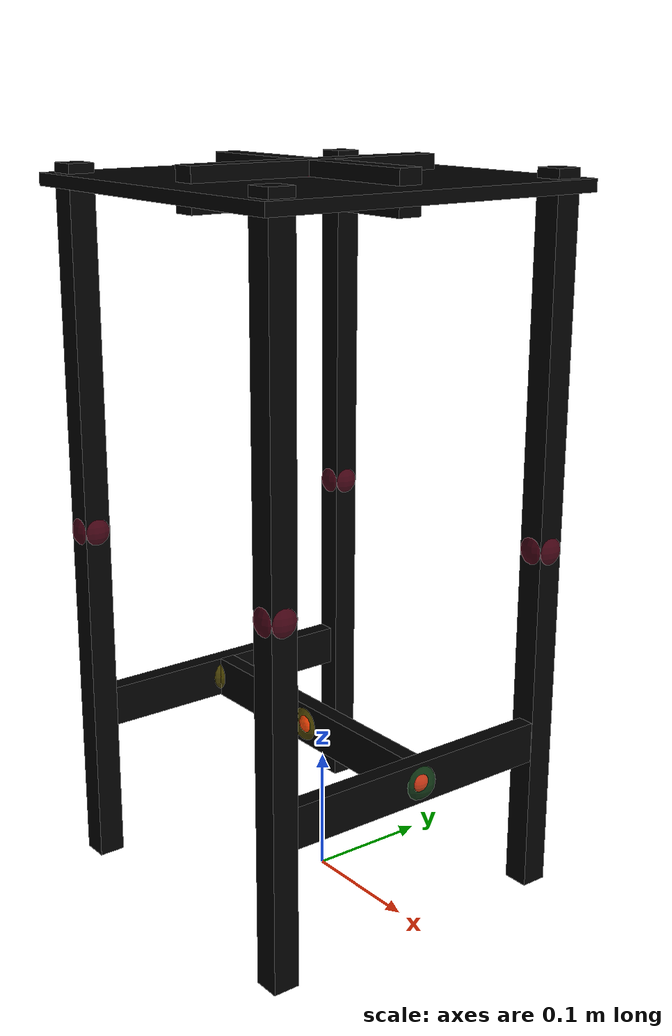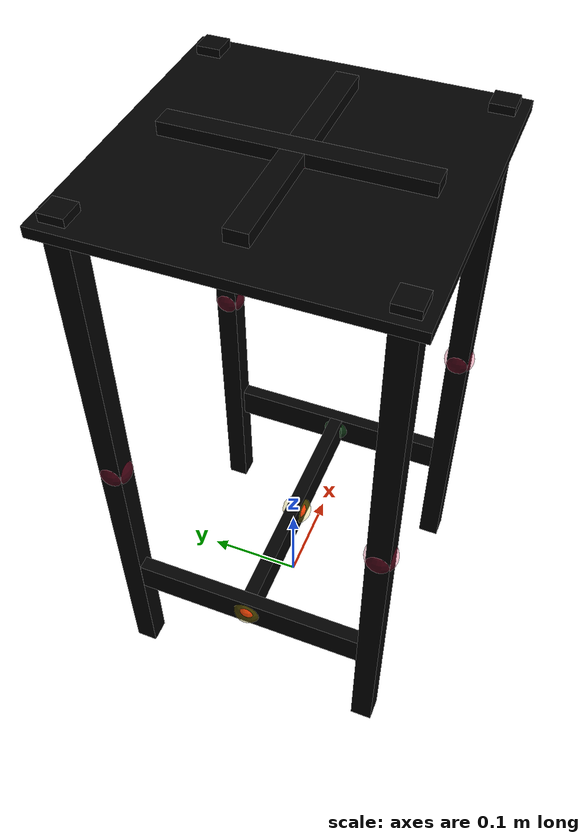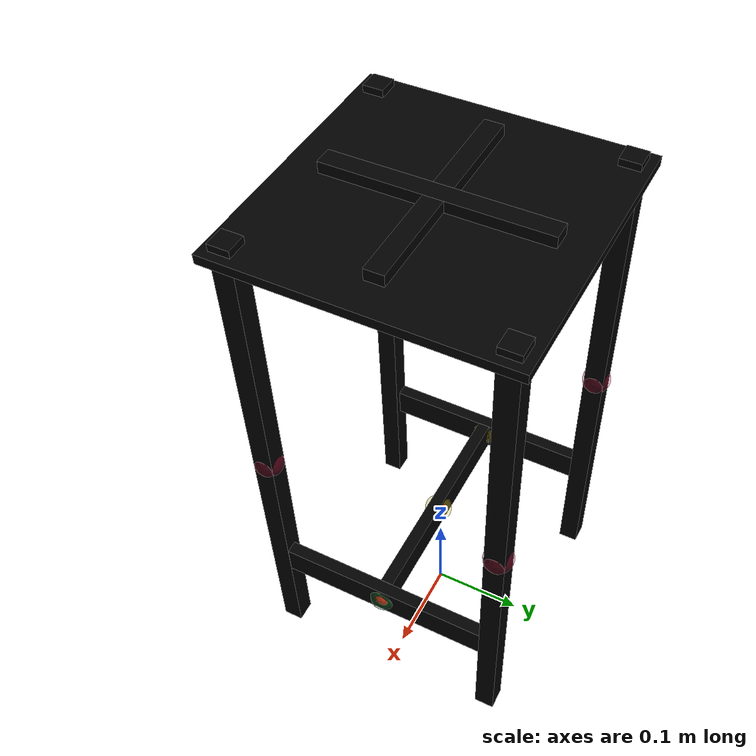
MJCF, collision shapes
<mujoco model="nightstand_1">
  <custom>

<numeric name="7_part7_initpos" data="0.2 0.09460705 0.02191628 0 0 -1 0" />

<numeric name="0_part0_initpos" data="0.53542564 0.5039378 0.01252427 0.5 -0.5 -0.5 0.5" />
<numeric name="6_part6_initpos" data="0.53406423 0.38586903 0.00894539 0.5 -0.5 -0.5 0.5" />
<numeric name="5_part5_initpos" data="-0.2433973 0.40326389 0.00891954 0.7 0 0.7 0" />
<numeric name="2_part2_initpos" data="-0.23966732 0.47204275 0.00891956 0.7 0 0.7 0" />

<numeric name="4_part4_initpos" data="0.54725019 0.1726845 0.01703871 0.71 0 0.71 0" />
<numeric name="3_part3_initpos" data="0.67266165 0.17964293 0.00679743 0.5 0.5 -0.5 -0.5" />
<numeric name="1_part1_initpos" data="0.46835845 0.1735415 0.01703871 0.71 0 0.71 0" />

  </custom>
  <asset>
    <mesh file="nightstand_1/0.stl" name="part0" scale="0.000768 0.000768 0.000768" />
    <mesh file="nightstand_1/7.stl" name="part7" scale="0.000768 0.000768 0.000768" />
    <mesh file="nightstand_1/6.stl" name="part6" scale="0.000768 0.000768 0.000768" />
    <mesh file="nightstand_1/5.stl" name="part5" scale="0.000768 0.000768 0.000768" />
    <mesh file="nightstand_1/4.stl" name="part4" scale="0.000768 0.000768 0.000768" />
    <mesh file="nightstand_1/3.stl" name="part3" scale="0.000768 0.000768 0.000768" />
    <mesh file="nightstand_1/2.stl" name="part2" scale="0.000768 0.000768 0.000768" />
    <mesh file="nightstand_1/1.stl" name="part1" scale="0.000768 0.000768 0.000768" />
  </asset>
  <worldbody><body name="combined_body" pos="0.12 0.12 0.2877311953125" quat="1 0 0 0"><geom conaffinity="0" contype="0" density="0" mesh="part0" name="0_part0_mesh" pos="3.0720000000000004e-10 0.0 7.680000000000001e-11" rgba="0.82 0.71 0.55 1" type="mesh" quat="1 0 0 0" />
      <geom density="50" name="noviz_collision_0_part0_0" pos="3.0720000000000004e-10 0.0 7.680000000000001e-11" quat="1 0 0 0" rgba="0 0 0 0" size="0.010752000000000001 0.010752000000000001 0.28800000000000003" solref="0.001 1" type="box" />
    <site name="0_part0_ltgt_site0" pos="3.0720000000000004e-10 0.0 7.680000000000001e-11" size="0.01 0.01 0.01" rgba="1 0 0 1" type="sphere" group="1" quat="1 0 0 0" />
      <site name="0_part0_rtgt_site0" pos="3.0720000000000004e-10 0.0 7.680000000000001e-11" size="0.01 0.01 0.01" rgba="1 0 0 1" type="sphere" group="1" quat="1 0 0 0" />

      <site name="0_part0_horizontal_radius_site" pos="3.0720000000000004e-10 0.0 7.680000000000001e-11" quat="1 0 0 0" rgba="0 0 0 0" size="0.01536" />
      <site name="0_part0_top_site" pos="3.0720000000000004e-10 0.0 7.680000000000001e-11" quat="1 0 0 0" rgba="0 0 0 0" size="0.01536" />
      <site name="0_part0_bottom_site" pos="3.0720000000000004e-10 0.0 7.680000000000001e-11" quat="1 0 0 0" rgba="0 0 0 0" size="0.01536" />
      <site name="0_part0_corner_site8" pos="3.0720000000000004e-10 0.0 7.680000000000001e-11" quat="1 0 0 0" rgba="0 0 0 0" size="0.01536" />
      <site name="0_part0_corner_site7" pos="3.0720000000000004e-10 0.0 7.680000000000001e-11" quat="1 0 0 0" rgba="0 0 0 0" size="0.01536" />
      <site name="0_part0_corner_site6" pos="3.0720000000000004e-10 0.0 7.680000000000001e-11" quat="1 0 0 0" rgba="0 0 0 0" size="0.01536" />
      <site name="0_part0_corner_site5" pos="3.0720000000000004e-10 0.0 7.680000000000001e-11" quat="1 0 0 0" rgba="0 0 0 0" size="0.01536" />
      <site name="0_part0_corner_site4" pos="3.0720000000000004e-10 0.0 7.680000000000001e-11" quat="1 0 0 0" rgba="0 0 0 0" size="0.01536" />
      <site name="0_part0_corner_site3" pos="3.0720000000000004e-10 0.0 7.680000000000001e-11" quat="1 0 0 0" rgba="0 0 0 0" size="0.01536" />
      <site name="0_part0_corner_site2" pos="3.0720000000000004e-10 0.0 7.680000000000001e-11" quat="1 0 0 0" rgba="0 0 0 0" size="0.01536" />
      <site name="0_part0_corner_site1" pos="3.0720000000000004e-10 0.0 7.680000000000001e-11" quat="1 0 0 0" rgba="0 0 0 0" size="0.01536" />
      <site name="leg-toppane,0,conn_site4" pos="3.0720000000000004e-10 0.0 7.680000000000001e-11" quat="1 0 0 0" rgba="0.9019 0.0980 0.2941 0.3" size="0.01536" />
      <site name="leg-siderail,0,180,conn_site3" pos="3.0720000000000004e-10 0.0 7.680000000000001e-11" quat="1 0 0 0" rgba="0.2352 0.7058 0.2941 0.3" size="0.01536" />
      <geom conaffinity="0" contype="0" density="0" mesh="part7" name="7_part7_mesh" pos="-0.12679679662079998 -0.1267968750336 0.2755392000768" rgba="0.82 0.71 0.55 1" type="mesh" quat="1 0 0 0" />
      <geom density="50" name="noviz_collision_7_part7_0" pos="-0.12679679662079998 -0.1267968750336 0.2755392000768" quat="1 0 0 0" rgba="0 0 0 0" size="0.146304 0.146304 0.004877568" solref="0.001 1" type="box" />
      <geom density="50" name="noviz_collision_7_part7_1" pos="-0.12679679662079998 -0.1267968750336 0.2755392000768" quat="1 0 0 0" rgba="0 0 0 0" size="0.0097536 0.11135999999999999 0.016718123520000003" solref="0.001 1" type="box" />
      <geom density="50" name="noviz_collision_7_part7_2" pos="-0.12679679662079998 -0.1267968750336 0.2755392000768" quat="1 0 0 0" rgba="0 0 0 0" size="0.0097536 0.11135999999999999 0.016718123520000003" solref="0.001 1" type="box" />
      <geom density="50" name="noviz_collision_7_part7_3" pos="-0.12679679662079998 -0.1267968750336 0.2755392000768" quat="1 0 0 0" rgba="0 0 0 0" size="0.11135999999999999 0.0097536 0.01671727872" solref="0.001 1" type="box" />
      <geom density="50" name="noviz_collision_7_part7_4" pos="-0.12679679662079998 -0.1267968750336 0.2755392000768" quat="1 0 0 0" rgba="0 0 0 0" size="0.11135999999999999 0.0097536 0.01671727872" solref="0.001 1" type="box" />
    <site name="7_part7_horizontal_radius_site" pos="-0.12679679662079998 -0.1267968750336 0.2755392000768" quat="1 0 0 0" rgba="0 0 0 0" size="0.01536" />
      <site name="7_part7_top_site" pos="-0.12679679662079998 -0.1267968750336 0.2755392000768" quat="1 0 0 0" rgba="0 0 0 0" size="0.01536" />
      <site name="7_part7_bottom_site" pos="-0.12679679662079998 -0.1267968750336 0.2755392000768" quat="1 0 0 0" rgba="0 0 0 0" size="0.01536" />
      <site name="7_part7_corner_site8" pos="-0.12679679662079998 -0.1267968750336 0.2755392000768" quat="1 0 0 0" rgba="0 0 0 0" size="0.01536" />
      <site name="7_part7_corner_site7" pos="-0.12679679662079998 -0.1267968750336 0.2755392000768" quat="1 0 0 0" rgba="0 0 0 0" size="0.01536" />
      <site name="7_part7_corner_site6" pos="-0.12679679662079998 -0.1267968750336 0.2755392000768" quat="1 0 0 0" rgba="0 0 0 0" size="0.01536" />
      <site name="7_part7_corner_site5" pos="-0.12679679662079998 -0.1267968750336 0.2755392000768" quat="1 0 0 0" rgba="0 0 0 0" size="0.01536" />
      <site name="7_part7_corner_site4" pos="-0.12679679662079998 -0.1267968750336 0.2755392000768" quat="1 0 0 0" rgba="0 0 0 0" size="0.01536" />
      <site name="7_part7_corner_site3" pos="-0.12679679662079998 -0.1267968750336 0.2755392000768" quat="1 0 0 0" rgba="0 0 0 0" size="0.01536" />
      <site name="7_part7_corner_site2" pos="-0.12679679662079998 -0.1267968750336 0.2755392000768" quat="1 0 0 0" rgba="0 0 0 0" size="0.01536" />
      <site name="7_part7_corner_site1" pos="-0.12679679662079998 -0.1267968750336 0.2755392000768" quat="1 0 0 0" rgba="0 0 0 0" size="0.01536" />
      <site name="toppane-leg,0,conn_site4" pos="-0.12679679662079998 -0.1267968750336 0.2755392000768" quat="1 0 0 0" rgba="0.9019 0.0980 0.2941 0.3" size="0.01536" />
      <site name="toppane-leg,0,conn_site3" pos="-0.12679679662079998 -0.1267968750336 0.2755392000768" quat="1 0 0 0" rgba="0.9019 0.0980 0.2941 0.3" size="0.01536" />
      <site name="toppane-leg,0,conn_site2" pos="-0.12679679662079998 -0.1267968750336 0.2755392000768" quat="1 0 0 0" rgba="0.9019 0.0980 0.2941 0.3" size="0.01536" />
      <site name="toppane-leg,0,conn_site1" pos="-0.12679679662079998 -0.1267968750336 0.2755392000768" quat="1 0 0 0" rgba="0.9019 0.0980 0.2941 0.3" size="0.01536" />
      <geom conaffinity="0" contype="0" density="0" mesh="part6" name="6_part6_mesh" pos="-0.2535935904 0.0 7.680000000000001e-11" rgba="0.82 0.71 0.55 1" type="mesh" quat="1 0 0 0" />
      <geom density="50" name="noviz_collision_6_part6_0" pos="-0.2535935904 0.0 7.680000000000001e-11" quat="1 0 0 0" rgba="0 0 0 0" size="0.010752000000000001 0.010752000000000001 0.28800000000000003" solref="0.001 1" type="box" />
    <site name="6_part6_ltgt_site0" pos="-0.2535935904 0.0 7.680000000000001e-11" size="0.01 0.01 0.01" rgba="1 0 0 1" type="sphere" group="1" quat="1 0 0 0" />
      <site name="6_part6_rtgt_site0" pos="-0.2535935904 0.0 7.680000000000001e-11" size="0.01 0.01 0.01" rgba="1 0 0 1" type="sphere" group="1" quat="1 0 0 0" />
      <site name="6_part6_horizontal_radius_site" pos="-0.2535935904 0.0 7.680000000000001e-11" quat="1 0 0 0" rgba="0 0 0 0" size="0.01536" />
      <site name="6_part6_top_site" pos="-0.2535935904 0.0 7.680000000000001e-11" quat="1 0 0 0" rgba="0 0 0 0" size="0.01536" />
      <site name="6_part6_bottom_site" pos="-0.2535935904 0.0 7.680000000000001e-11" quat="1 0 0 0" rgba="0 0 0 0" size="0.01536" />
      <site name="6_part6_corner_site8" pos="-0.2535935904 0.0 7.680000000000001e-11" quat="1 0 0 0" rgba="0 0 0 0" size="0.01536" />
      <site name="6_part6_corner_site7" pos="-0.2535935904 0.0 7.680000000000001e-11" quat="1 0 0 0" rgba="0 0 0 0" size="0.01536" />
      <site name="6_part6_corner_site6" pos="-0.2535935904 0.0 7.680000000000001e-11" quat="1 0 0 0" rgba="0 0 0 0" size="0.01536" />
      <site name="6_part6_corner_site5" pos="-0.2535935904 0.0 7.680000000000001e-11" quat="1 0 0 0" rgba="0 0 0 0" size="0.01536" />
      <site name="6_part6_corner_site4" pos="-0.2535935904 0.0 7.680000000000001e-11" quat="1 0 0 0" rgba="0 0 0 0" size="0.01536" />
      <site name="6_part6_corner_site3" pos="-0.2535935904 0.0 7.680000000000001e-11" quat="1 0 0 0" rgba="0 0 0 0" size="0.01536" />
      <site name="6_part6_corner_site2" pos="-0.2535935904 0.0 7.680000000000001e-11" quat="1 0 0 0" rgba="0 0 0 0" size="0.01536" />
      <site name="6_part6_corner_site1" pos="-0.2535935904 0.0 7.680000000000001e-11" quat="1 0 0 0" rgba="0 0 0 0" size="0.01536" />
      <site name="leg-toppane,0,conn_site2" pos="-0.2535935904 0.0 7.680000000000001e-11" quat="1 0 0 0" rgba="0.9019 0.0980 0.2941 0.3" size="0.01536" />
      <site name="leg-siderail,0,180,conn_site2" pos="-0.2535935904 0.0 7.680000000000001e-11" quat="1 0 0 0" rgba="0.2352 0.7058 0.2941 0.3" size="0.01536" />
      <geom conaffinity="0" contype="0" density="0" mesh="part5" name="5_part5_mesh" pos="-0.2535935904 -0.25359366435840003 7.680000000000001e-11" rgba="0.82 0.71 0.55 1" type="mesh" quat="1 0 0 0" />
      <geom density="50" name="noviz_collision_5_part5_0" pos="-0.2535935904 -0.25359366435840003 7.680000000000001e-11" quat="1 0 0 0" rgba="0 0 0 0" size="0.010752000000000001 0.010752000000000001 0.28800000000000003" solref="0.001 1" type="box" />
    <site name="5_part5_ltgt_site0" pos="-0.2535935904 -0.25359366435840003 7.680000000000001e-11" size="0.01 0.01 0.01" rgba="1 0 0 1" type="sphere" group="1" quat="1 0 0 0" />
      <site name="5_part5_rtgt_site0" pos="-0.2535935904 -0.25359366435840003 7.680000000000001e-11" size="0.01 0.01 0.01" rgba="1 0 0 1" type="sphere" group="1" quat="1 0 0 0" />
      <site name="5_part5_horizontal_radius_site" pos="-0.2535935904 -0.25359366435840003 7.680000000000001e-11" quat="1 0 0 0" rgba="0 0 0 0" size="0.01536" />
      <site name="5_part5_top_site" pos="-0.2535935904 -0.25359366435840003 7.680000000000001e-11" quat="1 0 0 0" rgba="0 0 0 0" size="0.01536" />
      <site name="5_part5_bottom_site" pos="-0.2535935904 -0.25359366435840003 7.680000000000001e-11" quat="1 0 0 0" rgba="0 0 0 0" size="0.01536" />
      <site name="5_part5_corner_site8" pos="-0.2535935904 -0.25359366435840003 7.680000000000001e-11" quat="1 0 0 0" rgba="0 0 0 0" size="0.01536" />
      <site name="5_part5_corner_site7" pos="-0.2535935904 -0.25359366435840003 7.680000000000001e-11" quat="1 0 0 0" rgba="0 0 0 0" size="0.01536" />
      <site name="5_part5_corner_site6" pos="-0.2535935904 -0.25359366435840003 7.680000000000001e-11" quat="1 0 0 0" rgba="0 0 0 0" size="0.01536" />
      <site name="5_part5_corner_site5" pos="-0.2535935904 -0.25359366435840003 7.680000000000001e-11" quat="1 0 0 0" rgba="0 0 0 0" size="0.01536" />
      <site name="5_part5_corner_site4" pos="-0.2535935904 -0.25359366435840003 7.680000000000001e-11" quat="1 0 0 0" rgba="0 0 0 0" size="0.01536" />
      <site name="5_part5_corner_site3" pos="-0.2535935904 -0.25359366435840003 7.680000000000001e-11" quat="1 0 0 0" rgba="0 0 0 0" size="0.01536" />
      <site name="5_part5_corner_site2" pos="-0.2535935904 -0.25359366435840003 7.680000000000001e-11" quat="1 0 0 0" rgba="0 0 0 0" size="0.01536" />
      <site name="5_part5_corner_site1" pos="-0.2535935904 -0.25359366435840003 7.680000000000001e-11" quat="1 0 0 0" rgba="0 0 0 0" size="0.01536" />
      <site name="leg-toppane,0,conn_site1" pos="-0.2535935904 -0.25359366435840003 7.680000000000001e-11" quat="1 0 0 0" rgba="0.9019 0.0980 0.2941 0.3" size="0.01536" />
      <site name="leg-siderail,0,180,conn_site1" pos="-0.2535935904 -0.25359366435840003 7.680000000000001e-11" quat="1 0 0 0" rgba="0.2352 0.7058 0.2941 0.3" size="0.01536" />
      <geom conaffinity="0" contype="0" density="0" mesh="part4" name="4_part4_mesh" pos="-0.2571403571712 -0.12679683440640002 -0.15849600007680004" rgba="0.82 0.71 0.55 1" type="mesh" quat="1 0 0 0" />
      <geom density="50" name="noviz_collision_4_part4_0" pos="-0.2571403571712 -0.12679683440640002 -0.15849600007680004" quat="1 0 0 0" rgba="0 0 0 0" size="0.00682985472 0.11988149760000001 0.016718123520000003" solref="0.001 1" type="box" />
    <site name="4_part4_horizontal_radius_site" pos="-0.2571403571712 -0.12679683440640002 -0.15849600007680004" quat="1 0 0 0" rgba="0 0 0 0" size="0.01536" />
      <site name="4_part4_top_site" pos="-0.2571403571712 -0.12679683440640002 -0.15849600007680004" quat="1 0 0 0" rgba="0 0 0 0" size="0.01536" />
      <site name="4_part4_bottom_site" pos="-0.2571403571712 -0.12679683440640002 -0.15849600007680004" quat="1 0 0 0" rgba="0 0 0 0" size="0.01536" />
      <site name="4_part4_ltgt_site0" pos="-0.2571403571712 -0.12679683440640002 -0.15849600007680004" size="0.01 0.01 0.01" rgba="1 0 0 1" type="sphere" group="1" quat="1 0 0 0" />
      <site name="4_part4_rtgt_site0" pos="-0.2571403571712 -0.12679683440640002 -0.15849600007680004" size="0.01 0.01 0.01" rgba="1 0 0 1" type="sphere" group="1" quat="1 0 0 0" />
      <site name="4_part4_corner_site8" pos="-0.2571403571712 -0.12679683440640002 -0.15849600007680004" quat="1 0 0 0" rgba="0 0 0 0" size="0.01536" />
      <site name="4_part4_corner_site7" pos="-0.2571403571712 -0.12679683440640002 -0.15849600007680004" quat="1 0 0 0" rgba="0 0 0 0" size="0.01536" />
      <site name="4_part4_corner_site6" pos="-0.2571403571712 -0.12679683440640002 -0.15849600007680004" quat="1 0 0 0" rgba="0 0 0 0" size="0.01536" />
      <site name="4_part4_corner_site5" pos="-0.2571403571712 -0.12679683440640002 -0.15849600007680004" quat="1 0 0 0" rgba="0 0 0 0" size="0.01536" />
      <site name="4_part4_corner_site4" pos="-0.2571403571712 -0.12679683440640002 -0.15849600007680004" quat="1 0 0 0" rgba="0 0 0 0" size="0.01536" />
      <site name="4_part4_corner_site3" pos="-0.2571403571712 -0.12679683440640002 -0.15849600007680004" quat="1 0 0 0" rgba="0 0 0 0" size="0.01536" />
      <site name="4_part4_corner_site2" pos="-0.2571403571712 -0.12679683440640002 -0.15849600007680004" quat="1 0 0 0" rgba="0 0 0 0" size="0.01536" />
      <site name="4_part4_corner_site1" pos="-0.2571403571712 -0.12679683440640002 -0.15849600007680004" quat="1 0 0 0" rgba="0 0 0 0" size="0.01536" />
      <site name="siderail-midrail,0,180,conn_site1" pos="-0.2571403571712 -0.12679683440640002 -0.15849600007680004" quat="1 0 0 0" rgba="1.0 0.8823 0.0980 0.3" size="0.01536" />
      <site name="siderail-leg,0,180,conn_site2" pos="-0.2571403571712 -0.12679683440640002 -0.15849600007680004" quat="1 0 0 0" rgba="0.2352 0.7058 0.2941 0.3" size="0.01536" />
      <site name="siderail-leg,0,180,conn_site1" pos="-0.2571403571712 -0.12679683440640002 -0.15849600007680004" quat="1 0 0 0" rgba="0.2352 0.7058 0.2941 0.3" size="0.01536" />
      <geom conaffinity="0" contype="0" density="0" mesh="part3" name="3_part3_mesh" pos="-0.126796792704 -0.12679683440640002 -0.15849600007680004" rgba="0.82 0.71 0.55 1" type="mesh" quat="1 0 0 0" />
      <geom density="50" name="noviz_collision_3_part3_0" pos="-0.126796792704 -0.12679683440640002 -0.15849600007680004" quat="1 0 0 0" rgba="0 0 0 0" size="0.1235160576 0.00682752 0.017101278719999998" solref="0.001 1" type="box" />
    <site name="3_part3_ltgt_site0" pos="-0.126796792704 -0.12679683440640002 -0.15849600007680004" size="0.01 0.01 0.01" rgba="1 0 0 1" type="sphere" group="1" quat="1 0 0 0" />
      <site name="3_part3_rtgt_site0" pos="-0.126796792704 -0.12679683440640002 -0.15849600007680004" size="0.01 0.01 0.01" rgba="1 0 0 1" type="sphere" group="1" quat="1 0 0 0" />
      <site name="3_part3_horizontal_radius_site" pos="-0.126796792704 -0.12679683440640002 -0.15849600007680004" quat="1 0 0 0" rgba="0 0 0 0" size="0.01536" />
      <site name="3_part3_top_site" pos="-0.126796792704 -0.12679683440640002 -0.15849600007680004" quat="1 0 0 0" rgba="0 0 0 0" size="0.01536" />
      <site name="3_part3_bottom_site" pos="-0.126796792704 -0.12679683440640002 -0.15849600007680004" quat="1 0 0 0" rgba="0 0 0 0" size="0.01536" />
      <site name="3_part3_corner_site8" pos="-0.126796792704 -0.12679683440640002 -0.15849600007680004" quat="1 0 0 0" rgba="0 0 0 0" size="0.01536" />
      <site name="3_part3_corner_site7" pos="-0.126796792704 -0.12679683440640002 -0.15849600007680004" quat="1 0 0 0" rgba="0 0 0 0" size="0.01536" />
      <site name="3_part3_corner_site6" pos="-0.126796792704 -0.12679683440640002 -0.15849600007680004" quat="1 0 0 0" rgba="0 0 0 0" size="0.01536" />
      <site name="3_part3_corner_site5" pos="-0.126796792704 -0.12679683440640002 -0.15849600007680004" quat="1 0 0 0" rgba="0 0 0 0" size="0.01536" />
      <site name="3_part3_corner_site4" pos="-0.126796792704 -0.12679683440640002 -0.15849600007680004" quat="1 0 0 0" rgba="0 0 0 0" size="0.01536" />
      <site name="3_part3_corner_site3" pos="-0.126796792704 -0.12679683440640002 -0.15849600007680004" quat="1 0 0 0" rgba="0 0 0 0" size="0.01536" />
      <site name="3_part3_corner_site2" pos="-0.126796792704 -0.12679683440640002 -0.15849600007680004" quat="1 0 0 0" rgba="0 0 0 0" size="0.01536" />
      <site name="3_part3_corner_site1" pos="-0.126796792704 -0.12679683440640002 -0.15849600007680004" quat="1 0 0 0" rgba="0 0 0 0" size="0.01536" />
      <site name="midrail-siderail,0,180,conn_site2" pos="-0.126796792704 -0.12679683440640002 -0.15849600007680004" quat="1 0 0 0" rgba="1.0 0.8823 0.0980 0.3" size="0.01536" />
      <site name="midrail-siderail,0,180,conn_site1" pos="-0.126796792704 -0.12679683440640002 -0.15849600007680004" quat="1 0 0 0" rgba="1.0 0.8823 0.0980 0.3" size="0.01536" />
      <geom conaffinity="0" contype="0" density="0" mesh="part2" name="2_part2_mesh" pos="3.0720000000000004e-10 -0.25359366435840003 7.680000000000001e-11" rgba="0.82 0.71 0.55 1" type="mesh" quat="1 0 0 0" />
      <geom density="50" name="noviz_collision_2_part2_0" pos="3.0720000000000004e-10 -0.25359366435840003 7.680000000000001e-11" quat="1 0 0 0" rgba="0 0 0 0" size="0.010752000000000001 0.010752000000000001 0.28800000000000003" solref="0.001 1" type="box" />
    <site name="2_part2_ltgt_site0" pos="3.0720000000000004e-10 -0.25359366435840003 7.680000000000001e-11" size="0.01 0.01 0.01" rgba="1 0 0 1" type="sphere" group="1" quat="1 0 0 0" />
      <site name="2_part2_rtgt_site0" pos="3.0720000000000004e-10 -0.25359366435840003 7.680000000000001e-11" size="0.01 0.01 0.01" rgba="1 0 0 1" type="sphere" group="1" quat="1 0 0 0" />
      <site name="2_part2_horizontal_radius_site" pos="3.0720000000000004e-10 -0.25359366435840003 7.680000000000001e-11" quat="1 0 0 0" rgba="0 0 0 0" size="0.01536" />
      <site name="2_part2_top_site" pos="3.0720000000000004e-10 -0.25359366435840003 7.680000000000001e-11" quat="1 0 0 0" rgba="0 0 0 0" size="0.01536" />
      <site name="2_part2_bottom_site" pos="3.0720000000000004e-10 -0.25359366435840003 7.680000000000001e-11" quat="1 0 0 0" rgba="0 0 0 0" size="0.01536" />
      <site name="2_part2_corner_site8" pos="3.0720000000000004e-10 -0.25359366435840003 7.680000000000001e-11" quat="1 0 0 0" rgba="0 0 0 0" size="0.01536" />
      <site name="2_part2_corner_site7" pos="3.0720000000000004e-10 -0.25359366435840003 7.680000000000001e-11" quat="1 0 0 0" rgba="0 0 0 0" size="0.01536" />
      <site name="2_part2_corner_site6" pos="3.0720000000000004e-10 -0.25359366435840003 7.680000000000001e-11" quat="1 0 0 0" rgba="0 0 0 0" size="0.01536" />
      <site name="2_part2_corner_site5" pos="3.0720000000000004e-10 -0.25359366435840003 7.680000000000001e-11" quat="1 0 0 0" rgba="0 0 0 0" size="0.01536" />
      <site name="2_part2_corner_site4" pos="3.0720000000000004e-10 -0.25359366435840003 7.680000000000001e-11" quat="1 0 0 0" rgba="0 0 0 0" size="0.01536" />
      <site name="2_part2_corner_site3" pos="3.0720000000000004e-10 -0.25359366435840003 7.680000000000001e-11" quat="1 0 0 0" rgba="0 0 0 0" size="0.01536" />
      <site name="2_part2_corner_site2" pos="3.0720000000000004e-10 -0.25359366435840003 7.680000000000001e-11" quat="1 0 0 0" rgba="0 0 0 0" size="0.01536" />
      <site name="2_part2_corner_site1" pos="3.0720000000000004e-10 -0.25359366435840003 7.680000000000001e-11" quat="1 0 0 0" rgba="0 0 0 0" size="0.01536" />
      <site name="leg-toppane,0,conn_site3" pos="3.0720000000000004e-10 -0.25359366435840003 7.680000000000001e-11" quat="1 0 0 0" rgba="0.9019 0.0980 0.2941 0.3" size="0.01536" />
      <site name="leg-siderail,0,180,conn_site4" pos="3.0720000000000004e-10 -0.25359366435840003 7.680000000000001e-11" quat="1 0 0 0" rgba="0.2352 0.7058 0.2941 0.3" size="0.01536" />
      <geom conaffinity="0" contype="0" density="0" mesh="part1" name="1_part1_mesh" pos="0.0035467583232 -0.12679683440640002 -0.15849600007680004" rgba="0.82 0.71 0.55 1" type="mesh" quat="1 0 0 0" />
      <geom density="50" name="noviz_collision_1_part1_0" pos="0.0035467583232 -0.12679683440640002 -0.15849600007680004" quat="1 0 0 0" rgba="0 0 0 0" size="0.006825223680000001 0.11988057600000003 0.01671802368" solref="0.001 1" type="box" />
    <site name="1_part1_ltgt_site0" pos="0.0035467583232 -0.12679683440640002 -0.15849600007680004" size="0.01 0.01 0.01" rgba="1 0 0 1" type="sphere" group="1" quat="1 0 0 0" />
      <site name="1_part1_rtgt_site0" pos="0.0035467583232 -0.12679683440640002 -0.15849600007680004" size="0.01 0.01 0.01" rgba="1 0 0 1" type="sphere" group="1" quat="1 0 0 0" />
      <site name="1_part1_horizontal_radius_site" pos="0.0035467583232 -0.12679683440640002 -0.15849600007680004" quat="1 0 0 0" rgba="0 0 0 0" size="0.01536" />
      <site name="1_part1_top_site" pos="0.0035467583232 -0.12679683440640002 -0.15849600007680004" quat="1 0 0 0" rgba="0 0 0 0" size="0.01536" />
      <site name="1_part1_bottom_site" pos="0.0035467583232 -0.12679683440640002 -0.15849600007680004" quat="1 0 0 0" rgba="0 0 0 0" size="0.01536" />
      <site name="1_part1_corner_site8" pos="0.0035467583232 -0.12679683440640002 -0.15849600007680004" quat="1 0 0 0" rgba="0 0 0 0" size="0.01536" />
      <site name="1_part1_corner_site7" pos="0.0035467583232 -0.12679683440640002 -0.15849600007680004" quat="1 0 0 0" rgba="0 0 0 0" size="0.01536" />
      <site name="1_part1_corner_site6" pos="0.0035467583232 -0.12679683440640002 -0.15849600007680004" quat="1 0 0 0" rgba="0 0 0 0" size="0.01536" />
      <site name="1_part1_corner_site5" pos="0.0035467583232 -0.12679683440640002 -0.15849600007680004" quat="1 0 0 0" rgba="0 0 0 0" size="0.01536" />
      <site name="1_part1_corner_site4" pos="0.0035467583232 -0.12679683440640002 -0.15849600007680004" quat="1 0 0 0" rgba="0 0 0 0" size="0.01536" />
      <site name="1_part1_corner_site3" pos="0.0035467583232 -0.12679683440640002 -0.15849600007680004" quat="1 0 0 0" rgba="0 0 0 0" size="0.01536" />
      <site name="1_part1_corner_site2" pos="0.0035467583232 -0.12679683440640002 -0.15849600007680004" quat="1 0 0 0" rgba="0 0 0 0" size="0.01536" />
      <site name="1_part1_corner_site1" pos="0.0035467583232 -0.12679683440640002 -0.15849600007680004" quat="1 0 0 0" rgba="0 0 0 0" size="0.01536" />
      <site name="siderail-leg,0,180,conn_site4" pos="0.0035467583232 -0.12679683440640002 -0.15849600007680004" quat="1 0 0 0" rgba="0.2352 0.7058 0.2941 0.3" size="0.01536" />
      <site name="siderail-leg,0,180,conn_site3" pos="0.0035467583232 -0.12679683440640002 -0.15849600007680004" quat="1 0 0 0" rgba="0.2352 0.7058 0.2941 0.3" size="0.01536" />
      <site name="siderail-midrail,0,180,conn_site2" pos="0.0035467583232 -0.12679683440640002 -0.15849600007680004" quat="1 0 0 0" rgba="1.0 0.8823 0.0980 0.3" size="0.01536" />
      </body></worldbody></mujoco>
